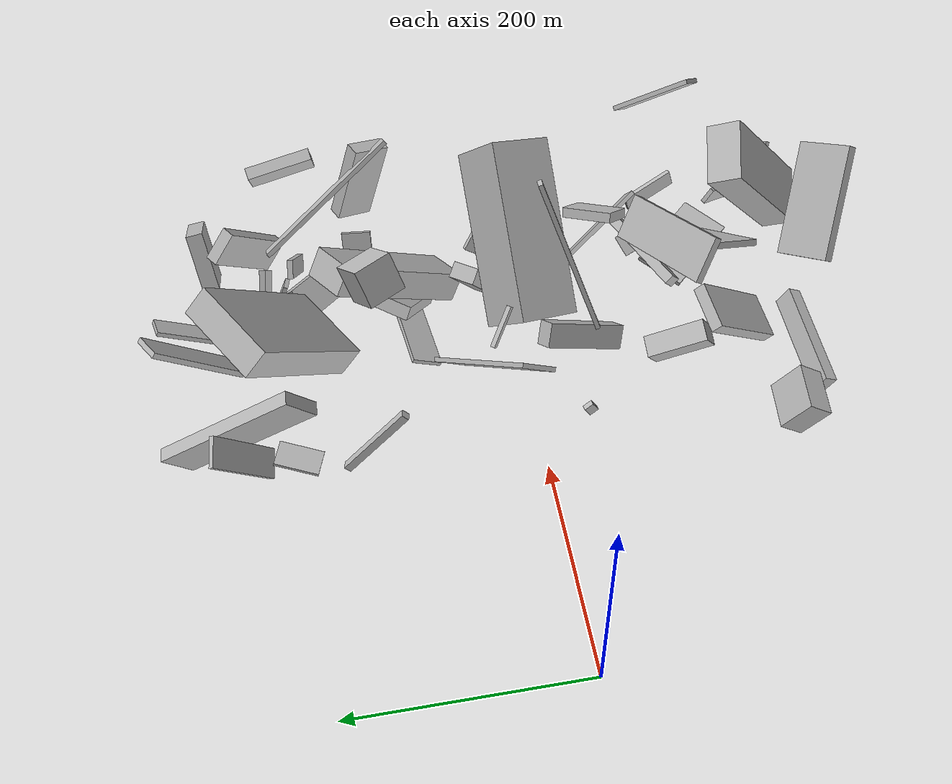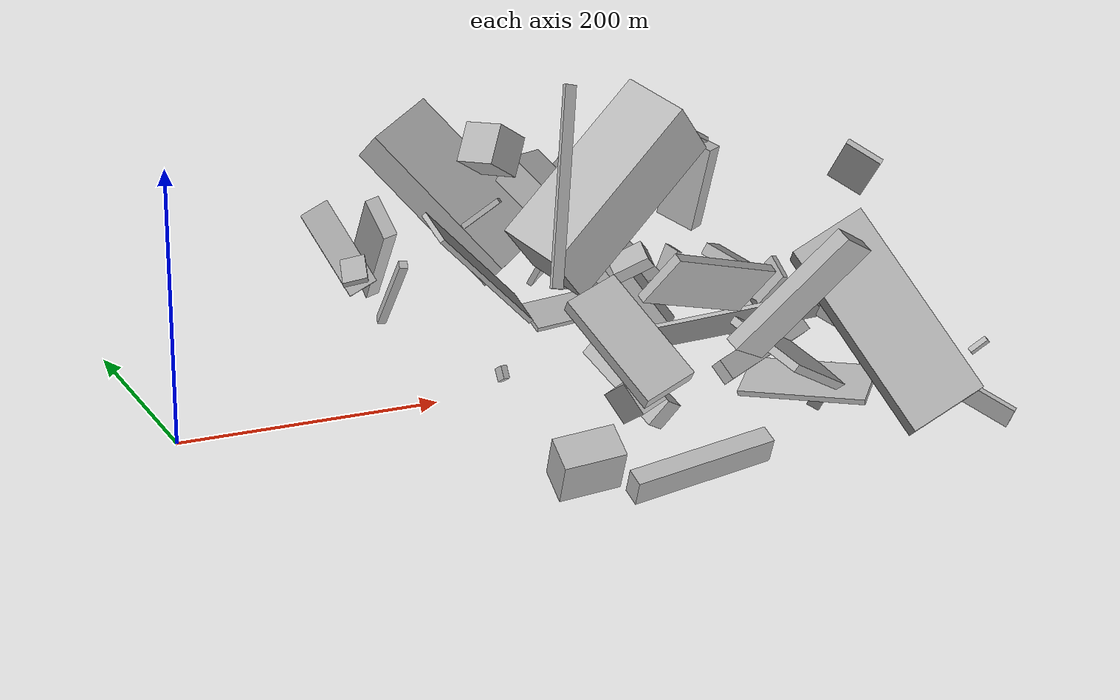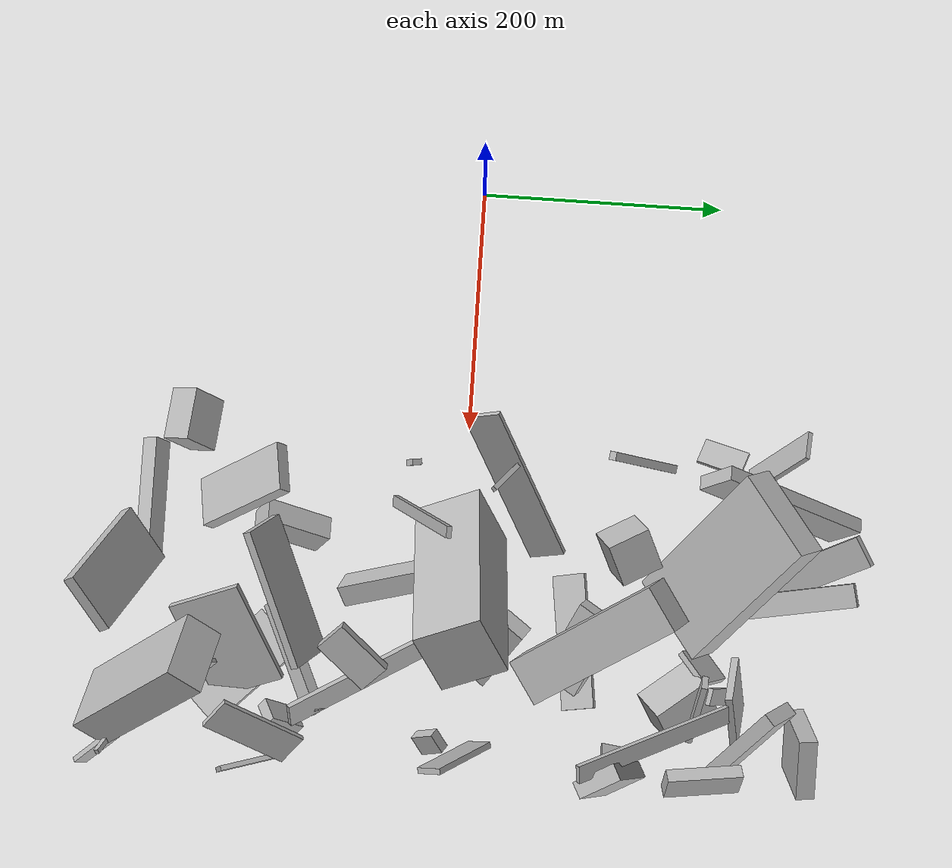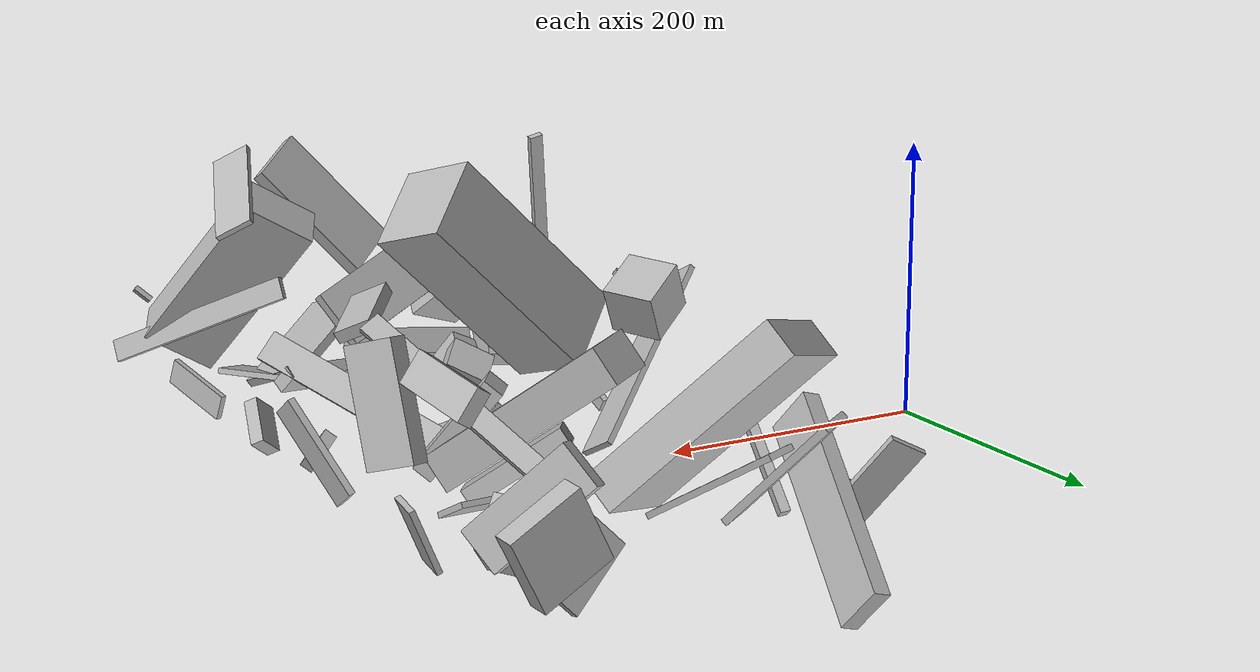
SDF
<sdf version="1.6">
 <world name="default">
  <model name="building_1">
   <static>0</static>
   <pose>390.7645210609277 125.73727766847779 84.9577063601798 1.4659314836074235 -0.9431476711980737 -0.8956609396629507</pose>
   <link name="link">
    <gravity>0</gravity>
    <pose>0 0 20.0 0 0 0</pose>
    <collision name="collision"><geometry><box><size>27 150 40</size></box></geometry></collision>
    <visual name="visual">
     <cast_shadows>0</cast_shadows>
     <geometry><box><size>27 150 40</size></box></geometry>
     <material>
      <script>
       <uri>model://HANNAS_wall/materials/scripts</uri>
       <uri>model://HANNAS_wall/materials/textures</uri>
       <name>vrc/HANNAS_wall</name>
      </script>
     </material>
    </visual>
   </link>
  </model>
  <model name="building_2">
   <static>0</static>
   <pose>410.7473086022219 219.55757573899982 37.12444703408252 2.8291807309695627 -1.1329694134910573 -1.4579880375638343</pose>
   <link name="link">
    <gravity>0</gravity>
    <pose>0 0 2.0 0 0 0</pose>
    <collision name="collision"><geometry><box><size>42 14 4</size></box></geometry></collision>
    <visual name="visual">
     <cast_shadows>0</cast_shadows>
     <geometry><box><size>42 14 4</size></box></geometry>
     <material>
      <script>
       <uri>model://HANNAS_wall/materials/scripts</uri>
       <uri>model://HANNAS_wall/materials/textures</uri>
       <name>vrc/HANNAS_wall</name>
      </script>
     </material>
    </visual>
   </link>
  </model>
  <model name="building_3">
   <static>0</static>
   <pose>440.24523693694243 238.49507576423997 72.11190579055166 1.3390695984959133 0.7880728693471631 2.0976596937145064</pose>
   <link name="link">
    <gravity>0</gravity>
    <pose>0 0 6.0 0 0 0</pose>
    <collision name="collision"><geometry><box><size>32 83 12</size></box></geometry></collision>
    <visual name="visual">
     <cast_shadows>0</cast_shadows>
     <geometry><box><size>32 83 12</size></box></geometry>
     <material>
      <script>
       <uri>model://HANNAS_wall/materials/scripts</uri>
       <uri>model://HANNAS_wall/materials/textures</uri>
       <name>vrc/HANNAS_wall</name>
      </script>
     </material>
    </visual>
   </link>
  </model>
  <model name="building_14">
   <static>0</static>
   <pose>481.0838566577164 141.24734808689462 74.60729190241459 0.2960167293836885 -0.11774795284896761 0.469337982967144</pose>
   <link name="link">
    <gravity>0</gravity>
    <pose>0 0 38.5 0 0 0</pose>
    <collision name="collision"><geometry><box><size>14 36 77</size></box></geometry></collision>
    <visual name="visual">
     <cast_shadows>0</cast_shadows>
     <geometry><box><size>14 36 77</size></box></geometry>
     <material>
      <script>
       <uri>model://HANNAS_wall/materials/scripts</uri>
       <uri>model://HANNAS_wall/materials/textures</uri>
       <name>vrc/HANNAS_wall</name>
      </script>
     </material>
    </visual>
   </link>
  </model>
  <model name="building_15">
   <static>0</static>
   <pose>356.89434844105676 -149.5950076279533 48.32510706537948 -1.367963284465958 0.8441214664272907 -0.988502112226222</pose>
   <link name="link">
    <gravity>0</gravity>
    <pose>0 0 49.0 0 0 0</pose>
    <collision name="collision"><geometry><box><size>16 10 98</size></box></geometry></collision>
    <visual name="visual">
     <cast_shadows>0</cast_shadows>
     <geometry><box><size>16 10 98</size></box></geometry>
     <material>
      <script>
       <uri>model://HANNAS_wall/materials/scripts</uri>
       <uri>model://HANNAS_wall/materials/textures</uri>
       <name>vrc/HANNAS_wall</name>
      </script>
     </material>
    </visual>
   </link>
  </model>
  <model name="building_19">
   <static>0</static>
   <pose>312.2127852345159 -252.96784149998294 104.50889150563111 0.48870731119706756 -0.5927946905534915 1.9331026538155913</pose>
   <link name="link">
    <gravity>0</gravity>
    <pose>0 0 50.5 0 0 0</pose>
    <collision name="collision"><geometry><box><size>10 50 101</size></box></geometry></collision>
    <visual name="visual">
     <cast_shadows>0</cast_shadows>
     <geometry><box><size>10 50 101</size></box></geometry>
     <material>
      <script>
       <uri>model://HANNAS_wall/materials/scripts</uri>
       <uri>model://HANNAS_wall/materials/textures</uri>
       <name>vrc/HANNAS_wall</name>
      </script>
     </material>
    </visual>
   </link>
  </model>
  <model name="building_20">
   <static>0</static>
   <pose>382.88516177037593 -156.60667426429706 77.23802803447288 1.9611211761678775 0.4578599252691296 0.5071660211587029</pose>
   <link name="link">
    <gravity>0</gravity>
    <pose>0 0 31.0 0 0 0</pose>
    <collision name="collision"><geometry><box><size>89 6 62</size></box></geometry></collision>
    <visual name="visual">
     <cast_shadows>0</cast_shadows>
     <geometry><box><size>89 6 62</size></box></geometry>
     <material>
      <script>
       <uri>model://HANNAS_wall/materials/scripts</uri>
       <uri>model://HANNAS_wall/materials/textures</uri>
       <name>vrc/HANNAS_wall</name>
      </script>
     </material>
    </visual>
   </link>
  </model>
  <model name="building_21">
   <static>0</static>
   <pose>372.95235696618346 98.51179552632884 24.028091740270835 0.04109502375978871 0.48479212336774813 -1.4226597157454315</pose>
   <link name="link">
    <gravity>0</gravity>
    <pose>0 0 2.0 0 0 0</pose>
    <collision name="collision"><geometry><box><size>29 111 4</size></box></geometry></collision>
    <visual name="visual">
     <cast_shadows>0</cast_shadows>
     <geometry><box><size>29 111 4</size></box></geometry>
     <material>
      <script>
       <uri>model://HANNAS_wall/materials/scripts</uri>
       <uri>model://HANNAS_wall/materials/textures</uri>
       <name>vrc/HANNAS_wall</name>
      </script>
     </material>
    </visual>
   </link>
  </model>
  <model name="building_22">
   <static>0</static>
   <pose>223.23101382768544 147.93484833447687 43.94777589985816 2.980217611788835 -0.8518509221885985 -1.5966207100746668</pose>
   <link name="link">
    <gravity>0</gravity>
    <pose>0 0 3.5 0 0 0</pose>
    <collision name="collision"><geometry><box><size>82 7 7</size></box></geometry></collision>
    <visual name="visual">
     <cast_shadows>0</cast_shadows>
     <geometry><box><size>82 7 7</size></box></geometry>
     <material>
      <script>
       <uri>model://HANNAS_wall/materials/scripts</uri>
       <uri>model://HANNAS_wall/materials/textures</uri>
       <name>vrc/HANNAS_wall</name>
      </script>
     </material>
    </visual>
   </link>
  </model>
  <model name="building_26">
   <static>0</static>
   <pose>271.84673909603737 -54.662753159472906 94.76337646166951 0.22926499515012133 0.3163323226481773 1.6032396149781334</pose>
   <link name="link">
    <gravity>0</gravity>
    <pose>0 0 75.0 0 0 0</pose>
    <collision name="collision"><geometry><box><size>4 9 150</size></box></geometry></collision>
    <visual name="visual">
     <cast_shadows>0</cast_shadows>
     <geometry><box><size>4 9 150</size></box></geometry>
     <material>
      <script>
       <uri>model://HANNAS_wall/materials/scripts</uri>
       <uri>model://HANNAS_wall/materials/textures</uri>
       <name>vrc/HANNAS_wall</name>
      </script>
     </material>
    </visual>
   </link>
  </model>
  <model name="building_27">
   <static>0</static>
   <pose>310.8844061588728 206.37528283997852 109.1774579201876 2.3509483486804017 0.2448011992040641 -2.5282818035994197</pose>
   <link name="link">
    <gravity>0</gravity>
    <pose>0 0 13.5 0 0 0</pose>
    <collision name="collision"><geometry><box><size>77 150 27</size></box></geometry></collision>
    <visual name="visual">
     <cast_shadows>0</cast_shadows>
     <geometry><box><size>77 150 27</size></box></geometry>
     <material>
      <script>
       <uri>model://HANNAS_wall/materials/scripts</uri>
       <uri>model://HANNAS_wall/materials/textures</uri>
       <name>vrc/HANNAS_wall</name>
      </script>
     </material>
    </visual>
   </link>
  </model>
  <model name="building_29">
   <static>0</static>
   <pose>236.10132187333602 201.2746157346633 88.7706197517776 -2.7031077530893652 0.8690033500782893 -1.2570277760518405</pose>
   <link name="link">
    <gravity>0</gravity>
    <pose>0 0 75.0 0 0 0</pose>
    <collision name="collision"><geometry><box><size>36 12 150</size></box></geometry></collision>
    <visual name="visual">
     <cast_shadows>0</cast_shadows>
     <geometry><box><size>36 12 150</size></box></geometry>
     <material>
      <script>
       <uri>model://HANNAS_wall/materials/scripts</uri>
       <uri>model://HANNAS_wall/materials/textures</uri>
       <name>vrc/HANNAS_wall</name>
      </script>
     </material>
    </visual>
   </link>
  </model>
  <model name="building_30">
   <static>0</static>
   <pose>474.12985462824804 -3.1951246305109398 39.366862159009585 0.9342314570715853 -0.2539705996840212 -2.931746834548957</pose>
   <link name="link">
    <gravity>0</gravity>
    <pose>0 0 11.0 0 0 0</pose>
    <collision name="collision"><geometry><box><size>5 73 22</size></box></geometry></collision>
    <visual name="visual">
     <cast_shadows>0</cast_shadows>
     <geometry><box><size>5 73 22</size></box></geometry>
     <material>
      <script>
       <uri>model://HANNAS_wall/materials/scripts</uri>
       <uri>model://HANNAS_wall/materials/textures</uri>
       <name>vrc/HANNAS_wall</name>
      </script>
     </material>
    </visual>
   </link>
  </model>
  <model name="building_31">
   <static>0</static>
   <pose>378.76685234967886 36.67122147088306 51.68259185773692 0.8992912805388237 0.01024486139980579 0.9360554472960368</pose>
   <link name="link">
    <gravity>0</gravity>
    <pose>0 0 7.5 0 0 0</pose>
    <collision name="collision"><geometry><box><size>24 77 15</size></box></geometry></collision>
    <visual name="visual">
     <cast_shadows>0</cast_shadows>
     <geometry><box><size>24 77 15</size></box></geometry>
     <material>
      <script>
       <uri>model://HANNAS_wall/materials/scripts</uri>
       <uri>model://HANNAS_wall/materials/textures</uri>
       <name>vrc/HANNAS_wall</name>
      </script>
     </material>
    </visual>
   </link>
  </model>
  <model name="building_33">
   <static>0</static>
   <pose>464.9778135766366 125.69860566982223 29.465019592021637 1.6104060488583032 -0.3957604733945091 2.989627724321912</pose>
   <link name="link">
    <gravity>0</gravity>
    <pose>0 0 14.0 0 0 0</pose>
    <collision name="collision"><geometry><box><size>4 46 28</size></box></geometry></collision>
    <visual name="visual">
     <cast_shadows>0</cast_shadows>
     <geometry><box><size>4 46 28</size></box></geometry>
     <material>
      <script>
       <uri>model://HANNAS_wall/materials/scripts</uri>
       <uri>model://HANNAS_wall/materials/textures</uri>
       <name>vrc/HANNAS_wall</name>
      </script>
     </material>
    </visual>
   </link>
  </model>
  <model name="building_34">
   <static>0</static>
   <pose>210.2183120740562 -217.49158142367435 39.08926824612544 2.151387597972045 -0.11829298842141718 -0.09808870040072772</pose>
   <link name="link">
    <gravity>0</gravity>
    <pose>0 0 12.5 0 0 0</pose>
    <collision name="collision"><geometry><box><size>43 37 25</size></box></geometry></collision>
    <visual name="visual">
     <cast_shadows>0</cast_shadows>
     <geometry><box><size>43 37 25</size></box></geometry>
     <material>
      <script>
       <uri>model://HANNAS_wall/materials/scripts</uri>
       <uri>model://HANNAS_wall/materials/textures</uri>
       <name>vrc/HANNAS_wall</name>
      </script>
     </material>
    </visual>
   </link>
  </model>
  <model name="building_35">
   <static>0</static>
   <pose>472.0013002981494 200.5734464140636 147.731234776262 -2.954137124278458 0.5511039223859566 -2.918256681429461</pose>
   <link name="link">
    <gravity>0</gravity>
    <pose>0 0 11.5 0 0 0</pose>
    <collision name="collision"><geometry><box><size>11 60 23</size></box></geometry></collision>
    <visual name="visual">
     <cast_shadows>0</cast_shadows>
     <geometry><box><size>11 60 23</size></box></geometry>
     <material>
      <script>
       <uri>model://HANNAS_wall/materials/scripts</uri>
       <uri>model://HANNAS_wall/materials/textures</uri>
       <name>vrc/HANNAS_wall</name>
      </script>
     </material>
    </visual>
   </link>
  </model>
  <model name="building_36">
   <static>0</static>
   <pose>295.42203980215027 146.30008544305832 153.35807636582933 -1.4222547160208519 1.0564623192437872 -2.5002925794018056</pose>
   <link name="link">
    <gravity>0</gravity>
    <pose>0 0 17.0 0 0 0</pose>
    <collision name="collision"><geometry><box><size>33 35 34</size></box></geometry></collision>
    <visual name="visual">
     <cast_shadows>0</cast_shadows>
     <geometry><box><size>33 35 34</size></box></geometry>
     <material>
      <script>
       <uri>model://HANNAS_wall/materials/scripts</uri>
       <uri>model://HANNAS_wall/materials/textures</uri>
       <name>vrc/HANNAS_wall</name>
      </script>
     </material>
    </visual>
   </link>
  </model>
  <model name="building_37">
   <static>0</static>
   <pose>473.7756823723896 -118.00796050890527 167.06811662298938 0.9318835532491963 0.49965362650950484 -0.7251448521371737</pose>
   <link name="link">
    <gravity>0</gravity>
    <pose>0 0 37.0 0 0 0</pose>
    <collision name="collision"><geometry><box><size>28 4 74</size></box></geometry></collision>
    <visual name="visual">
     <cast_shadows>0</cast_shadows>
     <geometry><box><size>28 4 74</size></box></geometry>
     <material>
      <script>
       <uri>model://HANNAS_wall/materials/scripts</uri>
       <uri>model://HANNAS_wall/materials/textures</uri>
       <name>vrc/HANNAS_wall</name>
      </script>
     </material>
    </visual>
   </link>
  </model>
  <model name="building_39">
   <static>0</static>
   <pose>396.299422990376 -79.15077625556593 105.16607897594109 -0.44451214003461503 -0.28564100714563373 -2.2722032414637505</pose>
   <link name="link">
    <gravity>0</gravity>
    <pose>0 0 4.5 0 0 0</pose>
    <collision name="collision"><geometry><box><size>50 28 9</size></box></geometry></collision>
    <visual name="visual">
     <cast_shadows>0</cast_shadows>
     <geometry><box><size>50 28 9</size></box></geometry>
     <material>
      <script>
       <uri>model://HANNAS_wall/materials/scripts</uri>
       <uri>model://HANNAS_wall/materials/textures</uri>
       <name>vrc/HANNAS_wall</name>
      </script>
     </material>
    </visual>
   </link>
  </model>
  <model name="building_40">
   <static>0</static>
   <pose>429.9442683126603 282.19359373601276 75.89561305727564 2.0726658844229062 0.08817398074977947 1.6750072314765942</pose>
   <link name="link">
    <gravity>0</gravity>
    <pose>0 0 26.0 0 0 0</pose>
    <collision name="collision"><geometry><box><size>15 55 52</size></box></geometry></collision>
    <visual name="visual">
     <cast_shadows>0</cast_shadows>
     <geometry><box><size>15 55 52</size></box></geometry>
     <material>
      <script>
       <uri>model://HANNAS_wall/materials/scripts</uri>
       <uri>model://HANNAS_wall/materials/textures</uri>
       <name>vrc/HANNAS_wall</name>
      </script>
     </material>
    </visual>
   </link>
  </model>
  <model name="building_43">
   <static>0</static>
   <pose>209.44898464085887 192.76300161442404 38.778190554413015 0.7251299811536223 -1.2396799108392782 -2.620493584118162</pose>
   <link name="link">
    <gravity>0</gravity>
    <pose>0 0 19.0 0 0 0</pose>
    <collision name="collision"><geometry><box><size>4 21 38</size></box></geometry></collision>
    <visual name="visual">
     <cast_shadows>0</cast_shadows>
     <geometry><box><size>4 21 38</size></box></geometry>
     <material>
      <script>
       <uri>model://HANNAS_wall/materials/scripts</uri>
       <uri>model://HANNAS_wall/materials/textures</uri>
       <name>vrc/HANNAS_wall</name>
      </script>
     </material>
    </visual>
   </link>
  </model>
  <model name="building_44">
   <static>0</static>
   <pose>405.24003133501145 -237.61073123411995 89.6872670217774 0.7229062079214557 -0.8349164885873647 2.0690364041195357</pose>
   <link name="link">
    <gravity>0</gravity>
    <pose>0 0 27.5 0 0 0</pose>
    <collision name="collision"><geometry><box><size>145 32 55</size></box></geometry></collision>
    <visual name="visual">
     <cast_shadows>0</cast_shadows>
     <geometry><box><size>145 32 55</size></box></geometry>
     <material>
      <script>
       <uri>model://HANNAS_wall/materials/scripts</uri>
       <uri>model://HANNAS_wall/materials/textures</uri>
       <name>vrc/HANNAS_wall</name>
      </script>
     </material>
    </visual>
   </link>
  </model>
  <model name="building_45">
   <static>0</static>
   <pose>342.08795995800205 -126.9201472630163 95.24859415205208 -0.3430604775237648 0.5984771130744526 -1.3739650340031633</pose>
   <link name="link">
    <gravity>0</gravity>
    <pose>0 0 21.0 0 0 0</pose>
    <collision name="collision"><geometry><box><size>7 116 42</size></box></geometry></collision>
    <visual name="visual">
     <cast_shadows>0</cast_shadows>
     <geometry><box><size>7 116 42</size></box></geometry>
     <material>
      <script>
       <uri>model://HANNAS_wall/materials/scripts</uri>
       <uri>model://HANNAS_wall/materials/textures</uri>
       <name>vrc/HANNAS_wall</name>
      </script>
     </material>
    </visual>
   </link>
  </model>
  <model name="building_47">
   <static>0</static>
   <pose>395.8824591538087 -191.73420511586977 37.2846591082052 0.20357131687910487 -1.3410099806608622 -2.5485129793530086</pose>
   <link name="link">
    <gravity>0</gravity>
    <pose>0 0 23.5 0 0 0</pose>
    <collision name="collision"><geometry><box><size>4 91 47</size></box></geometry></collision>
    <visual name="visual">
     <cast_shadows>0</cast_shadows>
     <geometry><box><size>4 91 47</size></box></geometry>
     <material>
      <script>
       <uri>model://HANNAS_wall/materials/scripts</uri>
       <uri>model://HANNAS_wall/materials/textures</uri>
       <name>vrc/HANNAS_wall</name>
      </script>
     </material>
    </visual>
   </link>
  </model>
  <model name="building_48">
   <static>0</static>
   <pose>446.5042356425457 -136.38344900579094 22.96439672772492 2.1250290955153184 -0.5978475411633912 0.5036526556607209</pose>
   <link name="link">
    <gravity>0</gravity>
    <pose>0 0 5.0 0 0 0</pose>
    <collision name="collision"><geometry><box><size>22 34 10</size></box></geometry></collision>
    <visual name="visual">
     <cast_shadows>0</cast_shadows>
     <geometry><box><size>22 34 10</size></box></geometry>
     <material>
      <script>
       <uri>model://HANNAS_wall/materials/scripts</uri>
       <uri>model://HANNAS_wall/materials/textures</uri>
       <name>vrc/HANNAS_wall</name>
      </script>
     </material>
    </visual>
   </link>
  </model>
  <model name="building_50">
   <static>0</static>
   <pose>445.39534066196137 161.18408600944443 122.05188144852355 2.3530366513217364 -0.822910777769637 1.0625005729837338</pose>
   <link name="link">
    <gravity>0</gravity>
    <pose>0 0 7.5 0 0 0</pose>
    <collision name="collision"><geometry><box><size>4 150 15</size></box></geometry></collision>
    <visual name="visual">
     <cast_shadows>0</cast_shadows>
     <geometry><box><size>4 150 15</size></box></geometry>
     <material>
      <script>
       <uri>model://HANNAS_wall/materials/scripts</uri>
       <uri>model://HANNAS_wall/materials/textures</uri>
       <name>vrc/HANNAS_wall</name>
      </script>
     </material>
    </visual>
   </link>
  </model>
  <model name="building_51">
   <static>0</static>
   <pose>268.11441330593766 -172.57555737903877 88.76673151213694 0.7041095540798115 -0.31933612132479205 0.16117123719142665</pose>
   <link name="link">
    <gravity>0</gravity>
    <pose>0 0 5.5 0 0 0</pose>
    <collision name="collision"><geometry><box><size>41 89 11</size></box></geometry></collision>
    <visual name="visual">
     <cast_shadows>0</cast_shadows>
     <geometry><box><size>41 89 11</size></box></geometry>
     <material>
      <script>
       <uri>model://HANNAS_wall/materials/scripts</uri>
       <uri>model://HANNAS_wall/materials/textures</uri>
       <name>vrc/HANNAS_wall</name>
      </script>
     </material>
    </visual>
   </link>
  </model>
  <model name="building_52">
   <static>0</static>
   <pose>369.55390659518974 88.17964937527292 46.20924084513044 1.366353316377884 -0.5691785202777603 2.684112150596668</pose>
   <link name="link">
    <gravity>0</gravity>
    <pose>0 0 17.0 0 0 0</pose>
    <collision name="collision"><geometry><box><size>74 13 34</size></box></geometry></collision>
    <visual name="visual">
     <cast_shadows>0</cast_shadows>
     <geometry><box><size>74 13 34</size></box></geometry>
     <material>
      <script>
       <uri>model://HANNAS_wall/materials/scripts</uri>
       <uri>model://HANNAS_wall/materials/textures</uri>
       <name>vrc/HANNAS_wall</name>
      </script>
     </material>
    </visual>
   </link>
  </model>
  <model name="building_53">
   <static>0</static>
   <pose>455.9371674896228 -20.4202015511675 42.807623677815435 -2.1252281860592572 -0.62055946365106 -0.5913513850068992</pose>
   <link name="link">
    <gravity>0</gravity>
    <pose>0 0 9.0 0 0 0</pose>
    <collision name="collision"><geometry><box><size>9 23 18</size></box></geometry></collision>
    <visual name="visual">
     <cast_shadows>0</cast_shadows>
     <geometry><box><size>9 23 18</size></box></geometry>
     <material>
      <script>
       <uri>model://HANNAS_wall/materials/scripts</uri>
       <uri>model://HANNAS_wall/materials/textures</uri>
       <name>vrc/HANNAS_wall</name>
      </script>
     </material>
    </visual>
   </link>
  </model>
  <model name="building_55">
   <static>0</static>
   <pose>404.4557226916719 -69.72065731936462 63.76440761650381 2.7103880327143113 -0.5989762643637802 0.8089411986075986</pose>
   <link name="link">
    <gravity>0</gravity>
    <pose>0 0 11.0 0 0 0</pose>
    <collision name="collision"><geometry><box><size>4 150 22</size></box></geometry></collision>
    <visual name="visual">
     <cast_shadows>0</cast_shadows>
     <geometry><box><size>4 150 22</size></box></geometry>
     <material>
      <script>
       <uri>model://HANNAS_wall/materials/scripts</uri>
       <uri>model://HANNAS_wall/materials/textures</uri>
       <name>vrc/HANNAS_wall</name>
      </script>
     </material>
    </visual>
   </link>
  </model>
  <model name="building_57">
   <static>0</static>
   <pose>317.82014611326787 257.85565464305387 51.68890707958689 0.7682234708515419 -0.09554225944783867 -2.6159602141839815</pose>
   <link name="link">
    <gravity>0</gravity>
    <pose>0 0 48.5 0 0 0</pose>
    <collision name="collision"><geometry><box><size>26 5 97</size></box></geometry></collision>
    <visual name="visual">
     <cast_shadows>0</cast_shadows>
     <geometry><box><size>26 5 97</size></box></geometry>
     <material>
      <script>
       <uri>model://HANNAS_wall/materials/scripts</uri>
       <uri>model://HANNAS_wall/materials/textures</uri>
       <name>vrc/HANNAS_wall</name>
      </script>
     </material>
    </visual>
   </link>
  </model>
  <model name="building_58">
   <static>0</static>
   <pose>251.31182571825198 41.29624950728646 84.44972416263647 -0.7773560814354183 0.4803079383925054 -1.4526971426851585</pose>
   <link name="link">
    <gravity>0</gravity>
    <pose>0 0 2.0 0 0 0</pose>
    <collision name="collision"><geometry><box><size>31 150 4</size></box></geometry></collision>
    <visual name="visual">
     <cast_shadows>0</cast_shadows>
     <geometry><box><size>31 150 4</size></box></geometry>
     <material>
      <script>
       <uri>model://HANNAS_wall/materials/scripts</uri>
       <uri>model://HANNAS_wall/materials/textures</uri>
       <name>vrc/HANNAS_wall</name>
      </script>
     </material>
    </visual>
   </link>
  </model>
  <model name="building_64">
   <static>0</static>
   <pose>340.9632980721012 209.96294063937367 43.84186203529251 1.0300835165584206 -0.1319805406862656 -2.9070320493865056</pose>
   <link name="link">
    <gravity>0</gravity>
    <pose>0 0 62.5 0 0 0</pose>
    <collision name="collision"><geometry><box><size>19 4 125</size></box></geometry></collision>
    <visual name="visual">
     <cast_shadows>0</cast_shadows>
     <geometry><box><size>19 4 125</size></box></geometry>
     <material>
      <script>
       <uri>model://HANNAS_wall/materials/scripts</uri>
       <uri>model://HANNAS_wall/materials/textures</uri>
       <name>vrc/HANNAS_wall</name>
      </script>
     </material>
    </visual>
   </link>
  </model>
  <model name="building_65">
   <static>0</static>
   <pose>373.9875975531763 193.91575172004087 27.63229507820057 1.2905358507847613 -0.5390828707676671 2.382651017386816</pose>
   <link name="link">
    <gravity>0</gravity>
    <pose>0 0 16.5 0 0 0</pose>
    <collision name="collision"><geometry><box><size>5 35 33</size></box></geometry></collision>
    <visual name="visual">
     <cast_shadows>0</cast_shadows>
     <geometry><box><size>5 35 33</size></box></geometry>
     <material>
      <script>
       <uri>model://HANNAS_wall/materials/scripts</uri>
       <uri>model://HANNAS_wall/materials/textures</uri>
       <name>vrc/HANNAS_wall</name>
      </script>
     </material>
    </visual>
   </link>
  </model>
  <model name="building_67">
   <static>0</static>
   <pose>432.19356138574733 166.68812897245303 33.86747031635577 1.6865998011979109 -0.8276533515049204 -2.558728344525973</pose>
   <link name="link">
    <gravity>0</gravity>
    <pose>0 0 24.0 0 0 0</pose>
    <collision name="collision"><geometry><box><size>38 32 48</size></box></geometry></collision>
    <visual name="visual">
     <cast_shadows>0</cast_shadows>
     <geometry><box><size>38 32 48</size></box></geometry>
     <material>
      <script>
       <uri>model://HANNAS_wall/materials/scripts</uri>
       <uri>model://HANNAS_wall/materials/textures</uri>
       <name>vrc/HANNAS_wall</name>
      </script>
     </material>
    </visual>
   </link>
  </model>
  <model name="building_68">
   <static>0</static>
   <pose>287.29904426352624 -0.6957653167661801 96.62845613193782 0.7626619255729199 -0.2788556744878722 1.9163941805289408</pose>
   <link name="link">
    <gravity>0</gravity>
    <pose>0 0 75.0 0 0 0</pose>
    <collision name="collision"><geometry><box><size>55 57 150</size></box></geometry></collision>
    <visual name="visual">
     <cast_shadows>0</cast_shadows>
     <geometry><box><size>55 57 150</size></box></geometry>
     <material>
      <script>
       <uri>model://HANNAS_wall/materials/scripts</uri>
       <uri>model://HANNAS_wall/materials/textures</uri>
       <name>vrc/HANNAS_wall</name>
      </script>
     </material>
    </visual>
   </link>
  </model>
  <model name="building_70">
   <static>0</static>
   <pose>283.37370322501715 -139.7499940902567 32.267665219897935 -1.076048235780916 -0.4677128027150888 -1.785607540222513</pose>
   <link name="link">
    <gravity>0</gravity>
    <pose>0 0 10.0 0 0 0</pose>
    <collision name="collision"><geometry><box><size>57 25 20</size></box></geometry></collision>
    <visual name="visual">
     <cast_shadows>0</cast_shadows>
     <geometry><box><size>57 25 20</size></box></geometry>
     <material>
      <script>
       <uri>model://HANNAS_wall/materials/scripts</uri>
       <uri>model://HANNAS_wall/materials/textures</uri>
       <name>vrc/HANNAS_wall</name>
      </script>
     </material>
    </visual>
   </link>
  </model>
  <model name="building_71">
   <static>0</static>
   <pose>395.21776341824165 226.56591811465512 54.1774691238469 -2.818096215021108 -0.7917360066674499 -0.18888366285347383</pose>
   <link name="link">
    <gravity>0</gravity>
    <pose>0 0 26.5 0 0 0</pose>
    <collision name="collision"><geometry><box><size>52 6 53</size></box></geometry></collision>
    <visual name="visual">
     <cast_shadows>0</cast_shadows>
     <geometry><box><size>52 6 53</size></box></geometry>
     <material>
      <script>
       <uri>model://HANNAS_wall/materials/scripts</uri>
       <uri>model://HANNAS_wall/materials/textures</uri>
       <name>vrc/HANNAS_wall</name>
      </script>
     </material>
    </visual>
   </link>
  </model>
  <model name="building_72">
   <static>0</static>
   <pose>482.30841804970623 -273.95397459736455 90.63815757570227 2.2956338802782503 -0.699562036139439 -0.48824421502321785</pose>
   <link name="link">
    <gravity>0</gravity>
    <pose>0 0 2.0 0 0 0</pose>
    <collision name="collision"><geometry><box><size>14 4 4</size></box></geometry></collision>
    <visual name="visual">
     <cast_shadows>0</cast_shadows>
     <geometry><box><size>14 4 4</size></box></geometry>
     <material>
      <script>
       <uri>model://HANNAS_wall/materials/scripts</uri>
       <uri>model://HANNAS_wall/materials/textures</uri>
       <name>vrc/HANNAS_wall</name>
      </script>
     </material>
    </visual>
   </link>
  </model>
  <model name="building_76">
   <static>0</static>
   <pose>206.79981826856132 256.97507698316633 44.40059372329212 0.7195454246048544 -0.9106753711493509 2.1783780929020033</pose>
   <link name="link">
    <gravity>0</gravity>
    <pose>0 0 13.0 0 0 0</pose>
    <collision name="collision"><geometry><box><size>80 4 26</size></box></geometry></collision>
    <visual name="visual">
     <cast_shadows>0</cast_shadows>
     <geometry><box><size>80 4 26</size></box></geometry>
     <material>
      <script>
       <uri>model://HANNAS_wall/materials/scripts</uri>
       <uri>model://HANNAS_wall/materials/textures</uri>
       <name>vrc/HANNAS_wall</name>
      </script>
     </material>
    </visual>
   </link>
  </model>
  <model name="building_78">
   <static>0</static>
   <pose>364.6337426131747 0.17014362561823537 82.0396690585978 0.621461525264597 0.4731342880593417 2.701115735324245</pose>
   <link name="link">
    <gravity>0</gravity>
    <pose>0 0 7.5 0 0 0</pose>
    <collision name="collision"><geometry><box><size>29 24 15</size></box></geometry></collision>
    <visual name="visual">
     <cast_shadows>0</cast_shadows>
     <geometry><box><size>29 24 15</size></box></geometry>
     <material>
      <script>
       <uri>model://HANNAS_wall/materials/scripts</uri>
       <uri>model://HANNAS_wall/materials/textures</uri>
       <name>vrc/HANNAS_wall</name>
      </script>
     </material>
    </visual>
   </link>
  </model>
  <model name="building_82">
   <static>0</static>
   <pose>486.1675179463068 -160.72282799212996 48.06183022437361 1.4879012023464837 -1.243666854445539 1.9552606608642586</pose>
   <link name="link">
    <gravity>0</gravity>
    <pose>0 0 2.0 0 0 0</pose>
    <collision name="collision"><geometry><box><size>18 53 4</size></box></geometry></collision>
    <visual name="visual">
     <cast_shadows>0</cast_shadows>
     <geometry><box><size>18 53 4</size></box></geometry>
     <material>
      <script>
       <uri>model://HANNAS_wall/materials/scripts</uri>
       <uri>model://HANNAS_wall/materials/textures</uri>
       <name>vrc/HANNAS_wall</name>
      </script>
     </material>
    </visual>
   </link>
  </model>
  <model name="building_84">
   <static>0</static>
   <pose>324.0930623437902 -20.472169800668546 35.31782158377473 2.32414931267814 -0.903623851376256 -0.40398139554921325</pose>
   <link name="link">
    <gravity>0</gravity>
    <pose>0 0 42.0 0 0 0</pose>
    <collision name="collision"><geometry><box><size>23 18 84</size></box></geometry></collision>
    <visual name="visual">
     <cast_shadows>0</cast_shadows>
     <geometry><box><size>23 18 84</size></box></geometry>
     <material>
      <script>
       <uri>model://HANNAS_wall/materials/scripts</uri>
       <uri>model://HANNAS_wall/materials/textures</uri>
       <name>vrc/HANNAS_wall</name>
      </script>
     </material>
    </visual>
   </link>
  </model>
  <model name="building_89">
   <static>0</static>
   <pose>261.8728195153566 23.375057372899626 143.53767753010726 2.2475032087425326 -0.1007863301129673 -2.330407923889799</pose>
   <link name="link">
    <gravity>0</gravity>
    <pose>0 0 18.0 0 0 0</pose>
    <collision name="collision"><geometry><box><size>4 4 36</size></box></geometry></collision>
    <visual name="visual">
     <cast_shadows>0</cast_shadows>
     <geometry><box><size>4 4 36</size></box></geometry>
     <material>
      <script>
       <uri>model://HANNAS_wall/materials/scripts</uri>
       <uri>model://HANNAS_wall/materials/textures</uri>
       <name>vrc/HANNAS_wall</name>
      </script>
     </material>
    </visual>
   </link>
  </model>
  <model name="building_90">
   <static>0</static>
   <pose>233.7144489999464 -46.23279530761857 27.663010907358544 -0.5591145442770981 0.07352652696270813 0.13803190419595543</pose>
   <link name="link">
    <gravity>0</gravity>
    <pose>0 0 5.0 0 0 0</pose>
    <collision name="collision"><geometry><box><size>5 9 10</size></box></geometry></collision>
    <visual name="visual">
     <cast_shadows>0</cast_shadows>
     <geometry><box><size>5 9 10</size></box></geometry>
     <material>
      <script>
       <uri>model://HANNAS_wall/materials/scripts</uri>
       <uri>model://HANNAS_wall/materials/textures</uri>
       <name>vrc/HANNAS_wall</name>
      </script>
     </material>
    </visual>
   </link>
  </model>
  <model name="building_91">
   <static>0</static>
   <pose>408.7809660102853 -192.27586771566473 103.32125261258862 -2.0024220558480135 0.28130344504303384 -2.5833332889885305</pose>
   <link name="link">
    <gravity>0</gravity>
    <pose>0 0 75.0 0 0 0</pose>
    <collision name="collision"><geometry><box><size>4 16 150</size></box></geometry></collision>
    <visual name="visual">
     <cast_shadows>0</cast_shadows>
     <geometry><box><size>4 16 150</size></box></geometry>
     <material>
      <script>
       <uri>model://HANNAS_wall/materials/scripts</uri>
       <uri>model://HANNAS_wall/materials/textures</uri>
       <name>vrc/HANNAS_wall</name>
      </script>
     </material>
    </visual>
   </link>
  </model>
  <model name="building_95">
   <static>0</static>
   <pose>279.8784454912814 -252.85453987814782 21.15484208755462 -0.14616519310775566 -0.4727735377273458 1.6576147757849344</pose>
   <link name="link">
    <gravity>0</gravity>
    <pose>0 0 10.0 0 0 0</pose>
    <collision name="collision"><geometry><box><size>13 102 20</size></box></geometry></collision>
    <visual name="visual">
     <cast_shadows>0</cast_shadows>
     <geometry><box><size>13 102 20</size></box></geometry>
     <material>
      <script>
       <uri>model://HANNAS_wall/materials/scripts</uri>
       <uri>model://HANNAS_wall/materials/textures</uri>
       <name>vrc/HANNAS_wall</name>
      </script>
     </material>
    </visual>
   </link>
  </model>
  <model name="building_96">
   <static>0</static>
   <pose>444.3997111739317 195.01800452490457 48.279700718316896 -0.9160549489010924 0.011246837959570046 1.4080690829318252</pose>
   <link name="link">
    <gravity>0</gravity>
    <pose>0 0 28.0 0 0 0</pose>
    <collision name="collision"><geometry><box><size>5 17 56</size></box></geometry></collision>
    <visual name="visual">
     <cast_shadows>0</cast_shadows>
     <geometry><box><size>5 17 56</size></box></geometry>
     <material>
      <script>
       <uri>model://HANNAS_wall/materials/scripts</uri>
       <uri>model://HANNAS_wall/materials/textures</uri>
       <name>vrc/HANNAS_wall</name>
      </script>
     </material>
    </visual>
   </link>
  </model>
 </world>
</sdf>
